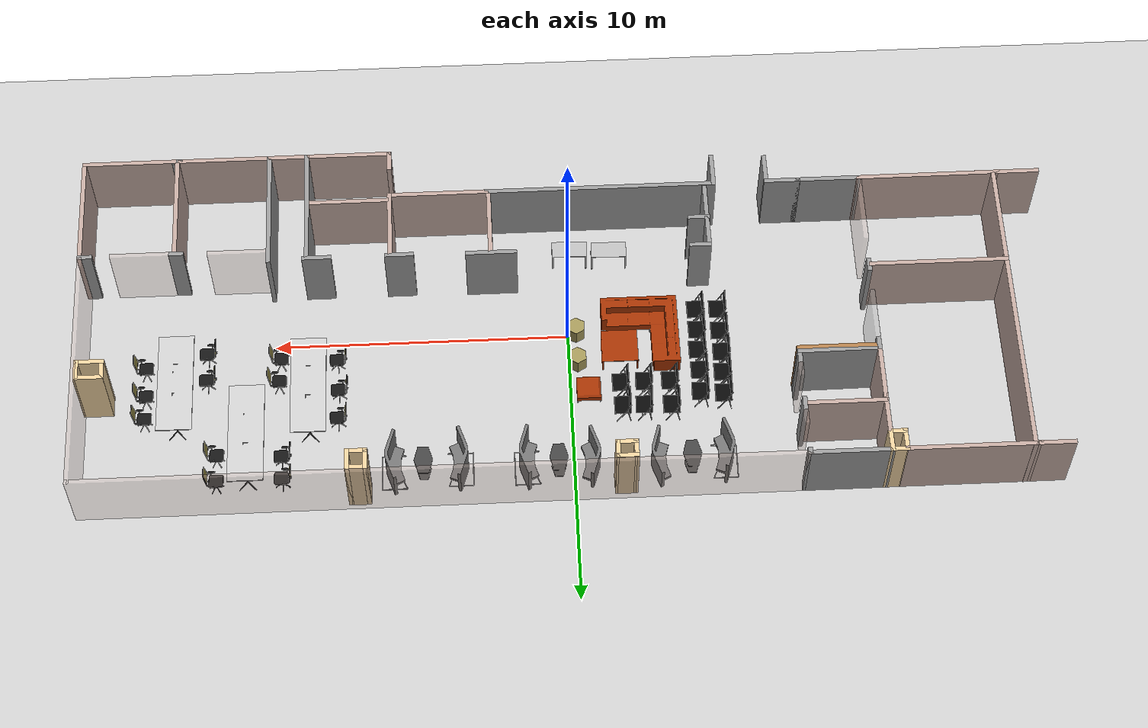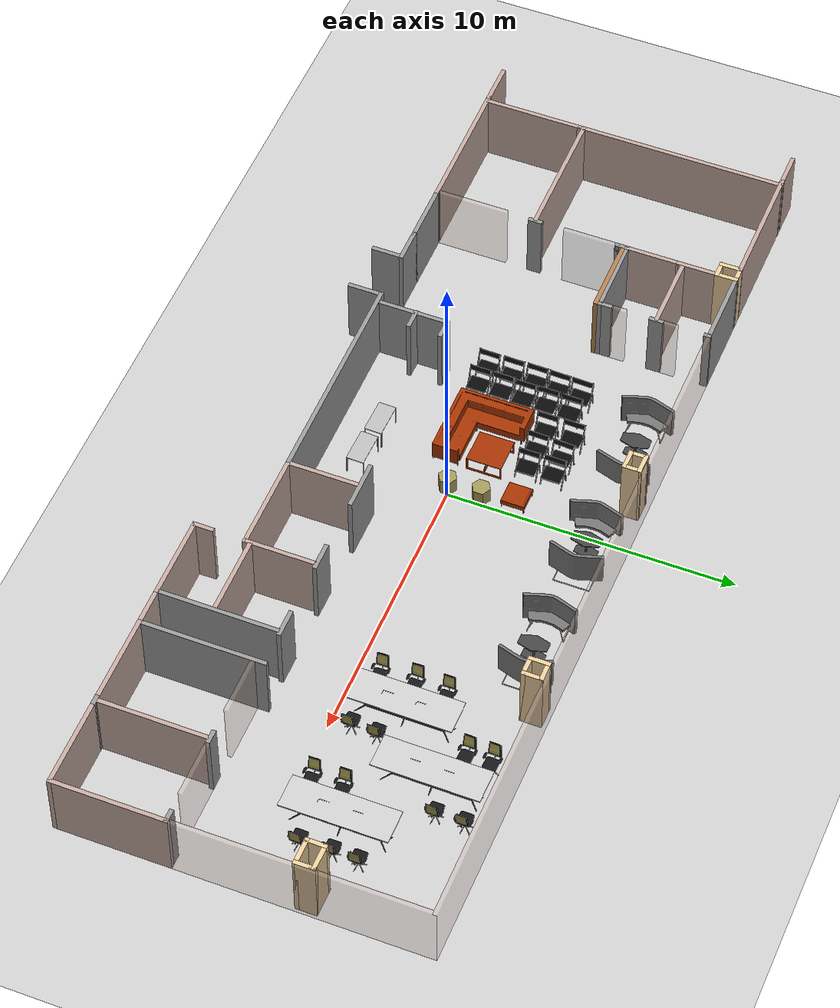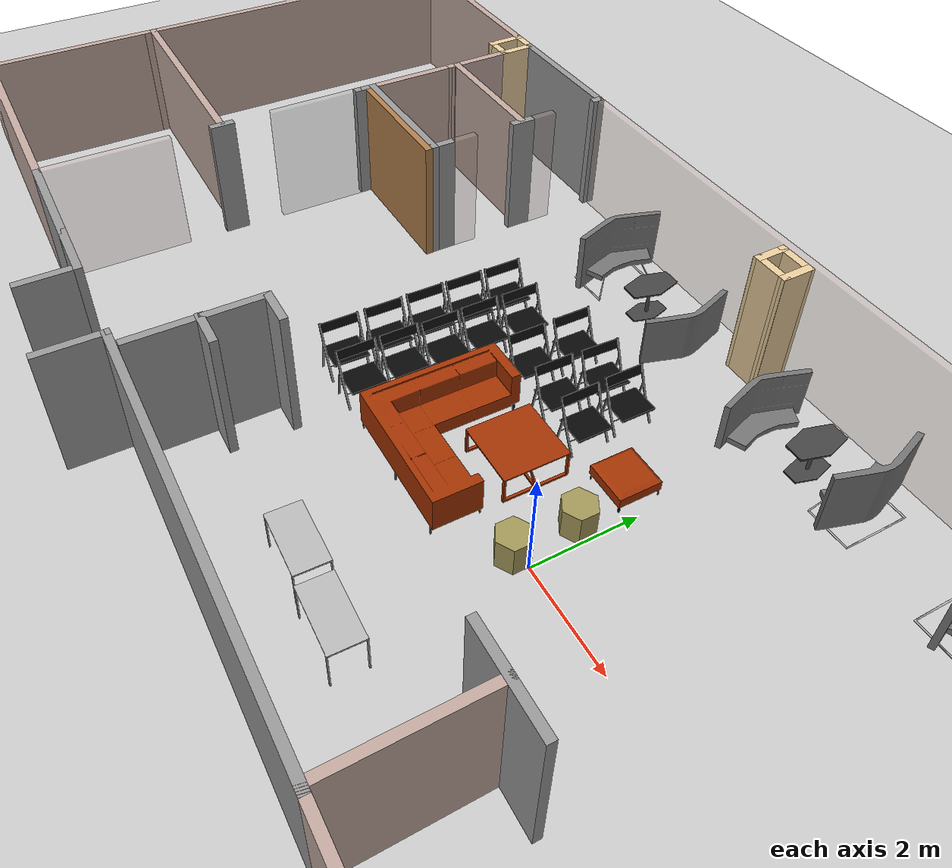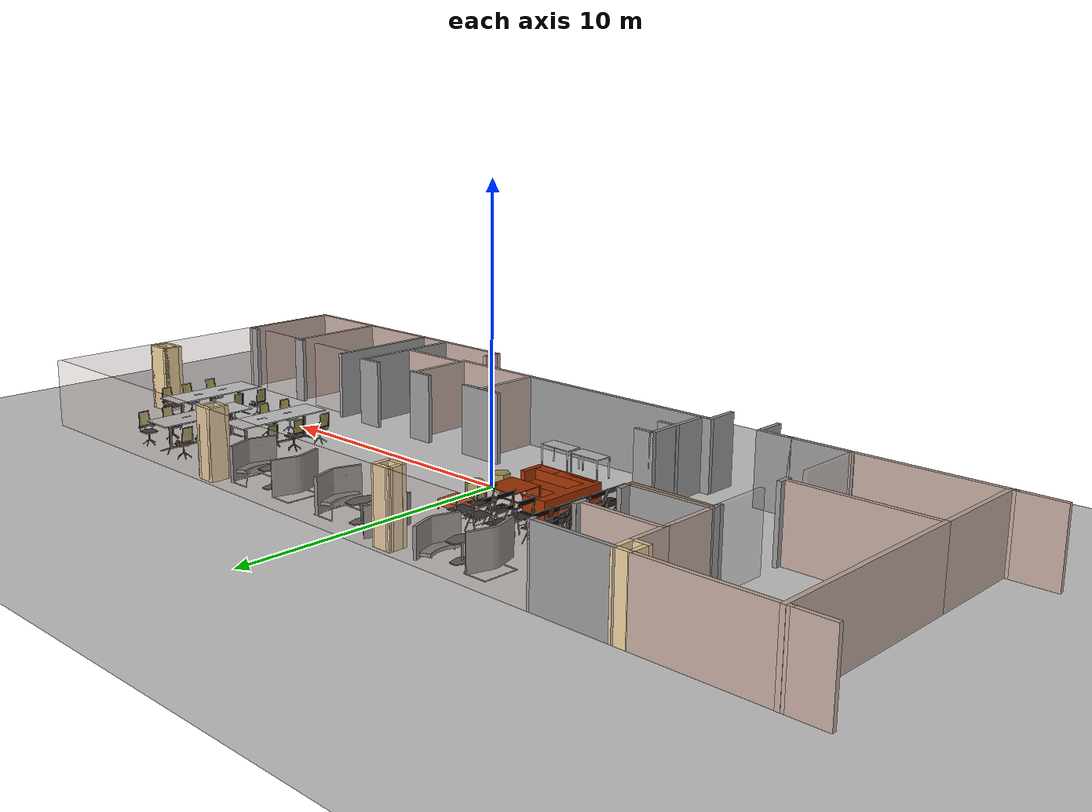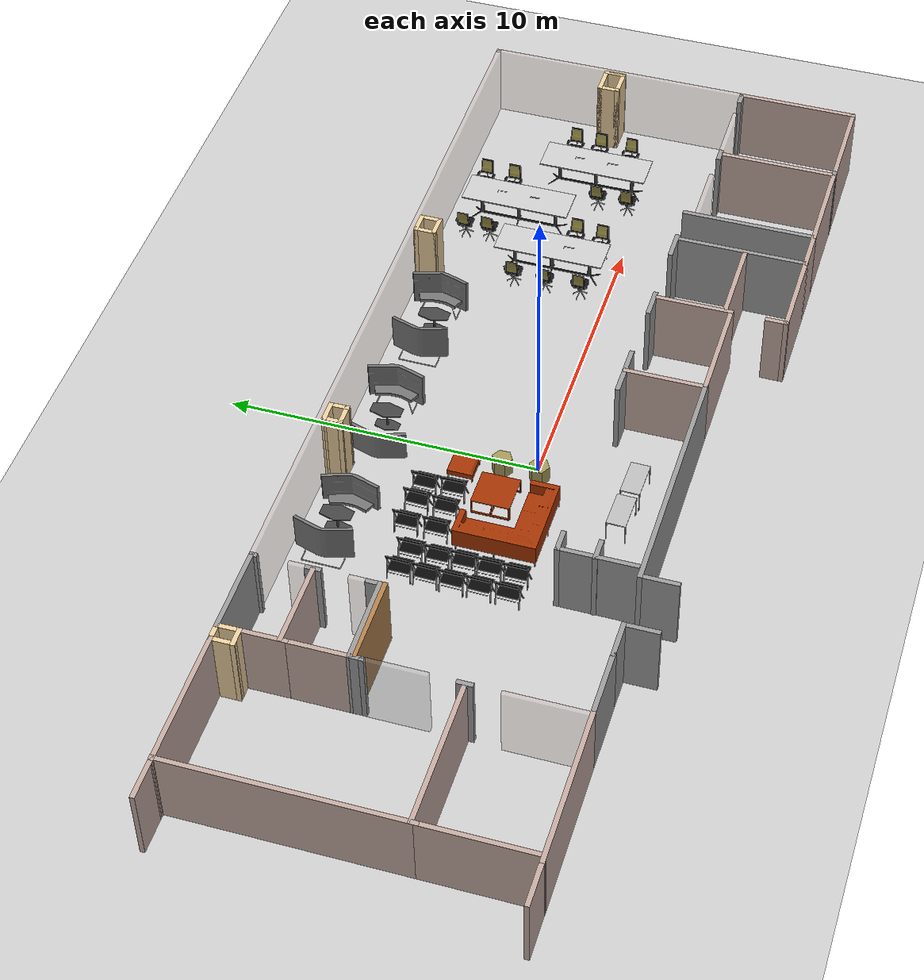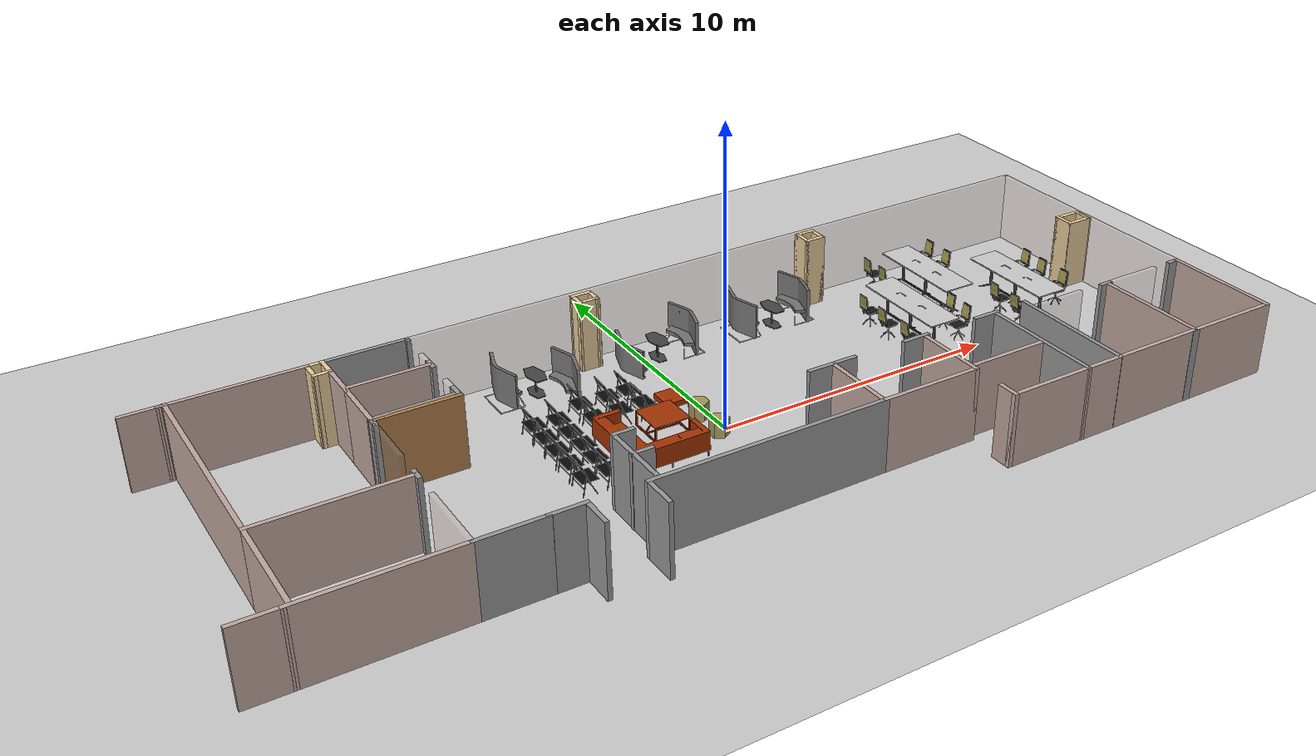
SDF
<?xml version="1.0" ?>
<sdf version="1.4">

  <world name="default">
    <include>
      <uri>model://ground_plane</uri>
    </include>

    <light name='sun' type='directional'>
      <cast_shadows>0</cast_shadows>
      <pose frame=''>0 0 10 0 -0 0</pose>
      <attenuation>
      </attenuation>
      <direction>-0.5 0.1 -0.9</direction>
    </light>

    <include>
      <uri>model://cr2_gazebo/models/ss_austin/austin_office_base</uri>
      <name>austin_office</name>
      <pose>0 0 0 0 0 0</pose>
    </include>

    <include>
      <uri>model://cr2_gazebo/models/ss_austin/sofa</uri>
      <name>sofa</name>
      <pose>-2.474693 0.283700 0.447276 -0.000004 -0.000002 3.140875</pose>
    </include>

    <include>
      <uri>model://cr2_gazebo/models/ss_austin/simple_chair</uri>
      <name>simple_chair_0</name>
      <pose>-1.752816 3.035121 0.458327 0.00 -0.000132 3.134327</pose>
    </include>

    <include>
      <uri>model://cr2_gazebo/models/ss_austin/simple_chair</uri>
      <name>simple_chair_1</name>
      <pose>-1.725184 2.139694 0.458326 -0.000003 -0.000134 -3.130285</pose>
    </include>

    <include>
      <uri>model://cr2_gazebo/models/ss_austin/simple_chair</uri>
      <name>simple_chair_2</name>
      <pose>-2.476814 3.044706 0.458328 0.000001 -0.000132 3.103170</pose>
    </include>

    <include>
      <uri>model://cr2_gazebo/models/ss_austin/simple_chair</uri>
      <name>simple_chair_3</name>
      <pose>-2.517177 2.132703 0.458328 0.000001 -0.000134 3.126198</pose>
    </include>

    <include>
      <uri>model://cr2_gazebo/models/ss_austin/simple_chair</uri>
      <name>simple_chair_4</name>
      <pose>-3.398947 3.074628 0.458329 -0.000003 -0.000134 3.132167</pose>
    </include>

    <include>
      <uri>model://cr2_gazebo/models/ss_austin/simple_chair</uri>
      <name>simple_chair_5</name>
      <pose>-3.394950 2.141943 0.458327 0.00 -0.000132 3.134203</pose>
    </include>

    <include>
      <uri>model://cr2_gazebo/models/ss_austin/simple_chair</uri>
      <name>simple_chair_6</name>
      <pose>-4.401969 2.606460 0.458325 0.000009 -0.000138 3.126337</pose>
    </include>

    <include>
      <uri>model://cr2_gazebo/models/ss_austin/simple_chair</uri>
      <name>simple_chair_7</name>
      <pose>-4.424557 1.771304 0.458328 0.00 -0.000134 -3.138608</pose>
    </include>

    <include>
      <uri>model://cr2_gazebo/models/ss_austin/simple_chair</uri>
      <name>simple_chair_8</name>
      <pose>-4.410206 0.962450 0.458327 0.00 -0.000132 -3.138225</pose>
    </include>

    <include>
      <uri>model://cr2_gazebo/models/ss_austin/simple_chair</uri>
      <name>simple_chair_9</name>
      <pose>-4.445363 0.160832 0.458327 0.00 -0.000132 -3.138929</pose>
    </include>

    <include>
      <uri>model://cr2_gazebo/models/ss_austin/simple_chair</uri>
      <name>simple_chair_10</name>
      <pose>-4.448195 -0.661269 0.458327 0.00 -0.000132 -3.138243</pose>
    </include>

    <include>
      <uri>model://cr2_gazebo/models/ss_austin/simple_chair</uri>
      <name>simple_chair_11</name>
      <pose>-5.183399 2.699501 0.458328 0.000001 -0.000132 3.126669</pose>
    </include>

    <include>
      <uri>model://cr2_gazebo/models/ss_austin/simple_chair</uri>
      <name>simple_chair_12</name>
      <pose>-5.201388 1.885506 0.458328 0.000001 -0.000132 3.126204</pose>
    </include>

    <include>
      <uri>model://cr2_gazebo/models/ss_austin/simple_chair</uri>
      <name>simple_chair_13</name>
      <pose>-5.220889 1.080064 0.458328 0.000001 -0.000132 3.126301</pose>
    </include>

    <include>
      <uri>model://cr2_gazebo/models/ss_austin/simple_chair</uri>
      <name>simple_chair_14</name>
      <pose>-5.212958 0.231431 0.458327 -0.000001 -0.000132 3.126477</pose>
    </include>

    <include>
      <uri>model://cr2_gazebo/models/ss_austin/simple_chair</uri>
      <name>simple_chair_15</name>
      <pose>-5.213259 -0.640615 0.458328 0.000001 -0.000132 3.126367</pose>
    </include>

    <include>
      <uri>model://cr2_gazebo/models/ss_austin/talk_sofa</uri>
      <name>talk_sofa_0</name>
      <pose>-5.171453 5.114709 0.778740 0.000004 0.000002 0.001596</pose>
    </include>

    <include>
      <uri>model://cr2_gazebo/models/ss_austin/talk_sofa</uri>
      <name>talk_sofa_1</name>
      <pose>-2.69869 5.06989 0.365 0 0 -3.12976</pose>
    </include>

    <include>
      <uri>model://cr2_gazebo/models/ss_austin/talk_sofa</uri>
      <name>talk_sofa_2</name>
      <pose>-0.743249 4.9706 0.365 0 -0 0.001606</pose>
    </include>

    <include>
      <uri>model://cr2_gazebo/models/ss_austin/talk_sofa</uri>
      <name>talk_sofa_3</name>
      <pose>6.142236 5.065474 0.778740 0.00 -0.000002 -3.130157</pose>
    </include>

    <include>
      <uri>model://cr2_gazebo/models/ss_austin/talk_sofa</uri>
      <name>talk_sofa_4</name>
      <pose>3.654634 5.031554 0.778743 0.00 0.00 0.001606</pose>
    </include>

    <include>
      <uri>model://cr2_gazebo/models/ss_austin/talk_sofa</uri>
      <name>talk_sofa_5</name>
      <pose>1.707233 5.085215 0.778743 0.00 0.000002 -3.129765</pose>
    </include>

    <include>
      <uri>model://cr2_gazebo/models/ss_austin/talk_table</uri>
      <name>talk_table_0</name>
      <pose>-3.929054 5.112441 0.404065 0.000006 0.000006 3.140211</pose>
    </include>

    <include>
      <uri>model://cr2_gazebo/models/ss_austin/talk_table</uri>
      <name>talk_table_1</name>
      <pose>0.516257 5.052311 0.404063 0.00 0.00 3.139933</pose>
    </include>

    <include>
      <uri>model://cr2_gazebo/models/ss_austin/talk_table</uri>
      <name>talk_table_2</name>
      <pose>5.025823 4.969944 0.404061 0.000010 -0.000006 -3.134065</pose>
    </include>

    <include>
      <uri>model://cr2_gazebo/models/ss_austin/long_table</uri>
      <name>long_table_1</name>
      <pose>13.292382 1.839442 0.610000 0.00 0.00 1.570009</pose>
    </include>

    <include>
      <uri>model://cr2_gazebo/models/ss_austin/long_table</uri>
      <name>long_table_2</name>
      <pose>10.882910 3.873014 0.610000 0.00 0.00 -1.57519</pose>
    </include>

    <include>
      <uri>model://cr2_gazebo/models/ss_austin/long_table</uri>
      <name>long_table_3</name>
      <pose>8.82175 2.112629 0.609995 0.000008 0.00 -1.575189</pose>
    </include>

    <include>
      <uri>model://cr2_gazebo/models/ss_austin/mini_table</uri>
      <name>mini_table</name>
      <pose>-1.52682 0.841662 0.490032 0 -3e-06 3.14018</pose>
    </include>

    <include>
      <uri>model://cr2_gazebo/models/ss_austin/stool</uri>
      <name>stool_1</name>
      <pose>-0.624225 2.19998 0.2 0 -0 3.14018</pose>
    </include>

    <include>
      <uri>model://cr2_gazebo/models/ss_austin/puffy_blue</uri>
      <name>puffy_blue_0</name>
      <pose>-0.3 -0.11 0.290000 0.00 0.00 3.140181</pose>
    </include>

    <include>
      <uri>model://cr2_gazebo/models/ss_austin/puffy_blue</uri>
      <name>puffy_blue_1</name>
      <pose>-0.3 1.07 0.29 0 -0 3.14018</pose>
    </include>

    <include>
      <uri>model://cr2_gazebo/models/ss_austin/table_in_the_kitchen</uri>
      <name>table_in_the_kitchen_1</name>
      <pose>-0.204635 -3.0939 0.5 0 -0 3.11796</pose>
    </include>

    <include>
      <uri>model://cr2_gazebo/models/ss_austin/table_in_the_kitchen</uri>
      <name>table_in_the_kitchen_2</name>
      <pose>-1.56907 -3.02112 0.499997 3e-06 -3e-06 3.11751</pose>
    </include>

    <include>
      <uri>model://cr2_gazebo/models/ss_austin/office_chair_near_white_table</uri>
      <name>office_chair_0</name>
      <pose>7.89232 0.873958 0.59 0 -0 1.58554</pose>
    </include>

    <include>
      <uri>model://cr2_gazebo/models/ss_austin/office_chair_near_white_table</uri>
      <name>office_chair_1</name>
      <pose>7.8549 2.053 0.59 0 -0 1.58585</pose>
    </include>

    <include>
      <uri>model://cr2_gazebo/models/ss_austin/office_chair_near_white_table</uri>
      <name>office_chair_2</name>
      <pose>7.8908 3.13126 0.59 0 -0 1.5854</pose>
    </include>

    <include>
      <uri>model://cr2_gazebo/models/ss_austin/office_chair_near_white_table</uri>
      <name>office_chair_3</name>
      <pose>12.31 0.442557 0.59 0 -0 1.58605</pose>
    </include>

    <include>
      <uri>model://cr2_gazebo/models/ss_austin/office_chair_near_white_table</uri>
      <name>office_chair_4</name>
      <pose>12.3097 1.47774 0.59 0 -0 1.58163</pose>
    </include>

    <include>
      <uri>model://cr2_gazebo/models/ss_austin/office_chair_near_white_table</uri>
      <name>office_chair_5</name>
      <pose>14.3537 0.939361 0.59 0 0 -1.57935</pose>
    </include>

    <include>
      <uri>model://cr2_gazebo/models/ss_austin/office_chair_near_white_table</uri>
      <name>office_chair_6</name>
      <pose>11.9001 5.38199 0.59 0 0 -1.57935</pose>
    </include>

    <include>
      <uri>model://cr2_gazebo/models/ss_austin/office_chair_near_white_table</uri>
      <name>office_chair_7</name>
      <pose>11.8993 4.41126 0.59 0 0 -1.57935</pose>
    </include>

    <include>
      <uri>model://cr2_gazebo/models/ss_austin/office_chair_near_white_table</uri>
      <name>office_chair_8</name>
      <pose>9.75719 4.54106 0.59 0 -0 1.54139</pose>
    </include>

    <include>
      <uri>model://cr2_gazebo/models/ss_austin/office_chair_near_white_table</uri>
      <name>office_chair_9</name>
      <pose>9.73888 5.37214 0.59 0 -0 1.54139</pose>
    </include>

    <include>
      <uri>model://cr2_gazebo/models/ss_austin/office_chair_near_white_table</uri>
      <name>office_chair_10</name>
      <pose>14.3339 2.02488 0.59 0 0 -1.57935</pose>
    </include>

    <include>
      <uri>model://cr2_gazebo/models/ss_austin/office_chair_near_white_table</uri>
      <name>office_chair_11</name>
      <pose>14.3633 2.90135 0.59 0 0 -1.57935</pose>
    </include>

    <include>
      <uri>model://cr2_gazebo/models/ss_austin/office_chair_near_white_table</uri>
      <name>office_chair_12</name>
      <pose>9.776310 0.738197 0.590000 0.00 0.00 -1.579350</pose>
    </include>

    <include>
      <uri>model://cr2_gazebo/models/ss_austin/office_chair_near_white_table</uri>
      <name>office_chair_13</name>
      <pose>9.841594 1.625942 0.5900000 0.00 0.00 -1.579350</pose>
    </include>

    <gui fullscreen='0'>
      <camera name='user_camera'>
        <pose>4.927360 -4.376610 3.740080 0.000000 0.275643 2.356190</pose>
        <view_controller>orbit</view_controller>
      </camera>
    </gui>

  </world>
</sdf>

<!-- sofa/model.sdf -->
<sdf version='1.5'>
    <model name="sofa">
        <pose>0 0 0 0 0 0</pose>
        <static>false</static>
        <link name='model_body'>
            <visual name="visual">
                <geometry>
                    <mesh>
                        <uri>model://cr2_gazebo/meshes/ss_austin/sofa_visual.dae</uri>
                        <scale>1 1 1</scale>
                    </mesh>
                </geometry>
            </visual>

            <collision name="collision">
                <geometry>
                    <mesh>
                        <uri>model://cr2_gazebo/meshes/ss_austin/sofa_collision.stl</uri>
                        <scale>1 1 1</scale>
                    </mesh>
                </geometry>
            </collision>

            <inertial>
                <pose> 0 0 0 0 0 0</pose>
                <inertia>
                    <ixx>24.88533333333333</ixx>
                    <ixy>0</ixy>
                    <ixz>0</ixz>
                    <iyy>24.88533333333333</iyy>
                    <iyz>0</iyz>
                    <izz>45.06666666666667</izz>
                </inertia>
                <mass>40.0</mass>
            </inertial>
        </link>
    </model>
</sdf>

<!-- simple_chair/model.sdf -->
<sdf version='1.5'>
    <model name="simple_chair">
        <pose>0 0 0 0 0 0</pose>
        <static>false</static>
        <link name='model_body'>
            <visual name="visual">
                <geometry>
                    <mesh>
                        <uri>model://cr2_gazebo/meshes/ss_austin/simple_chair_visual.dae</uri>
                        <scale>1 1 1</scale>
                    </mesh>
                </geometry>
            </visual>

            <collision name="collision">
                <geometry>
                    <box>
                        <size>0.87 0.87 1.02</size>
                    </box>
                </geometry>
            </collision>

            <inertial>
                <pose> 0 0 0 0 0 0</pose>
                <inertia>
                    <ixx>0.4706666666666666</ixx>
                    <ixy>0</ixy>
                    <ixz>0</ixz>
                    <iyy>0.4706666666666666</iyy>
                    <iyz>0</iyz>
                    <izz>0.10799999999999998</izz>
                </inertia>
                <mass>5.0</mass>
            </inertial>
        </link>
    </model>
</sdf>

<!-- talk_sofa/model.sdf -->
<sdf version='1.5'>
    <model name="talk_sofa">
        <pose>0 0 0 0 0 0</pose>
        <static>false</static>
        <link name='model_body'>
            <visual name="visual">
                <geometry>
                    <mesh>
                        <uri>model://cr2_gazebo/meshes/ss_austin/talk_sofa_visual.dae</uri>
                        <scale>1 1 1</scale>
                    </mesh>
                </geometry>
            </visual>

            <collision name="collision">
                <geometry>
                    <box>
                        <size>0.86 1.23 1.73</size>
                    </box>
                </geometry>
            </collision>

            <inertial>
                <pose> 0 0 0 0 0 0</pose>
                <inertia>
                    <ixx>18.594</ixx>
                    <ixy>0</ixy>
                    <ixz>0</ixz>
                    <iyy>9.418</iyy>
                    <iyz>0</iyz>
                    <izz>12.874</izz>
                </inertia>
                <mass>30.0</mass>
            </inertial>
        </link>
    </model>
</sdf>

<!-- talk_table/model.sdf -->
<sdf version='1.5'>
    <model name="talk_table">
        <pose>0 0 0 0 0 0</pose>
        <static>false</static>
        <link name='model_body'>
            <visual name="visual">
                <geometry>
                    <mesh>
                        <uri>model://cr2_gazebo/meshes/ss_austin/talk_table_visual.dae</uri>
                        <scale>1 1 1</scale>
                    </mesh>
                </geometry>
            </visual>

            <collision name="collision">
                <geometry>
                    <box>
                        <size>0.63 0.99 0.98</size>
                    </box>
                </geometry>
            </collision>

            <inertial>
                <pose> 0 0 0 0 0 0</pose>
                <inertia>
                    <ixx>0.7312000000000001</ixx>
                    <ixy>0</ixy>
                    <ixz>0</ixz>
                    <iyy>0.4296500000000001</iyy>
                    <iyz>0</iyz>
                    <izz>0.69845</izz>
                </inertia>
                <mass>10.0</mass>
            </inertial>
        </link>
    </model>
</sdf>

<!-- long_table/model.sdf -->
<sdf version='1.5'>
    <model name="long_table">
        <pose>0 0 0 0 0 0</pose>
        <static>false</static>
        <link name='model_body'>
            <visual name="visual">
                <geometry>
                    <mesh>
                        <uri>model://cr2_gazebo/meshes/ss_austin/long_table_visual.dae</uri>
                        <scale>1 1 1</scale>
                    </mesh>
                </geometry>
            </visual>

            <collision name="collision">
                <geometry>
                    <box>
                        <size>3.65 1.2 0.05</size>
                    </box>
                </geometry>
            </collision>

            <inertial>
                <pose> 0 0 0 0 0 0</pose>
                <inertia>
                    <ixx>3.0833333333333335</ixx>
                    <ixy>0</ixy>
                    <ixz>0</ixz>
                    <iyy>21.396833333333337</iyy>
                    <iyz>0</iyz>
                    <izz>20.446833333333334</izz>
                </inertia>
                <mass>20.0</mass>
            </inertial>
        </link>
    </model>
</sdf>

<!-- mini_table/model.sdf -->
<sdf version='1.5'>
    <model name="mini_table">
        <pose>0 0 0 0 0 0</pose>
        <static>false</static>
        <link name='model_body'>
            <visual name="visual">
                <geometry>
                    <mesh>
                        <uri>model://cr2_gazebo/meshes/ss_austin/mini_table_visual.dae</uri>
                        <scale>1 1 1</scale>
                    </mesh>
                </geometry>
            </visual>

            <collision name="collision">
                <geometry>
                    <box>
                        <size>1.23 1.23 0.52</size>
                    </box>
                </geometry>
            </collision>

            <inertial>
                <pose> 0 0 0 0 0 0</pose>
                <inertia>
                    <ixx>1.4860833333333332</ixx>
                    <ixy>0</ixy>
                    <ixz>0</ixz>
                    <iyy>1.4860833333333332</iyy>
                    <iyz>0</iyz>
                    <izz>2.5214999999999996</izz>
                </inertia>
                <mass>10.0</mass>
            </inertial>
        </link>
    </model>
</sdf>

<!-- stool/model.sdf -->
<sdf version='1.5'>
    <model name="stool">
        <pose>0 0 0 0 0 0</pose>
        <static>false</static>
        <link name='model_body'>
            <visual name="visual">
                <geometry>
                    <mesh>
                        <uri>model://cr2_gazebo/meshes/ss_austin/stool_visual.dae</uri>
                        <scale>1 1 1</scale>
                    </mesh>
                </geometry>
            </visual>

            <collision name="collision">
                <geometry>
                    <box>
                        <size>0.82 0.82 0.4</size>
                    </box>
                </geometry>
            </collision>

            <inertial>
                <pose> 0 0 0 0 0 0</pose>
                <inertia>
                    <ixx>0.6936666666666665</ixx>
                    <ixy>0</ixy>
                    <ixz>0</ixz>
                    <iyy>0.6936666666666665</iyy>
                    <iyz>0</iyz>
                    <izz>1.1206666666666665</izz>
                </inertia>
                <mass>10.0</mass>
            </inertial>
        </link>
    </model>
</sdf>

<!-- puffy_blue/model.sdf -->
<sdf version='1.5'>
    <model name="puffy_blue">
        <pose>0 0 0 0 0 0</pose>
        <static>false</static>
        <link name='model_body'>
            <visual name="visual">
                <geometry>
                    <mesh>
                        <uri>model://cr2_gazebo/meshes/ss_austin/puffy_blue_visual.dae</uri>
                        <scale>1 1 1</scale>
                    </mesh>
                </geometry>
            </visual>

            <collision name="collision">
                <geometry>
                    <box>
                        <size>0.56 0.65 0.58</size>
                    </box>
                </geometry>
            </collision>

            <inertial>
                <pose> 0 0 0 0 0 0</pose>
                <inertia>
                    <ixx>0.3162083333333333</ixx>
                    <ixy>0</ixy>
                    <ixz>0</ixz>
                    <iyy>0.2708333333333333</iyy>
                    <iyz>0</iyz>
                    <izz>0.30670833333333336</izz>
                </inertia>
                <mass>5.0</mass>
            </inertial>
        </link>
    </model>
</sdf>

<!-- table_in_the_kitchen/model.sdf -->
<sdf version='1.5'>
    <model name="table_in_the_kitchen">
        <pose>0 0 0 0 0 0</pose>
        <static>false</static>
        <link name='model_body'>
            <visual name="visual">
                <geometry>
                    <mesh>
                        <uri>model://cr2_gazebo/meshes/ss_austin/kitchen_table_visual.dae</uri>
                        <scale>1 1 1</scale>
                    </mesh>
                </geometry>
            </visual>

            <collision name="collision">
                <geometry>
                    <box>
                        <size>1.21 0.61 1.0</size>
                    </box>
                </geometry>
            </collision>

            <inertial>
                <pose> 0 0 0 0 0 0</pose>
                <inertia>
                    <ixx>1.1434166666666667</ixx>
                    <ixy>0</ixy>
                    <ixz>0</ixz>
                    <iyy>2.0534166666666667</iyy>
                    <iyz>0</iyz>
                    <izz>1.5301666666666665</izz>
                </inertia>
                <mass>10.0</mass>
            </inertial>
        </link>
    </model>
</sdf>

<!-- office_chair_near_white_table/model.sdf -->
<sdf version='1.5'>
    <model name="office_chair_near_white_table">
        <pose>0 0 0 0 0 0</pose>
        <static>false</static>
        <link name='model_body'>
            <visual name="visual">
                <geometry>
                    <mesh>
                        <uri>model://cr2_gazebo/meshes/ss_austin/office_chair_near_white_table_visual.dae</uri>
                        <scale>1 1 1</scale>
                    </mesh>
                </geometry>
            </visual>

            <collision name="collision">
                <geometry>
                    <box>
                        <size>0.6 0.6 1.18</size>
                    </box>
                </geometry>
            </collision>

            <inertial>
                <pose> 0 0 0 0 0 0</pose>
                <inertia>
                    <ixx>2.1904999999999997</ixx>
                    <ixy>0</ixy>
                    <ixz>0</ixz>
                    <iyy>2.1904999999999997</iyy>
                    <iyz>0</iyz>
                    <izz>0.8999999999999999</izz>
                </inertia>
                <mass>15.0</mass>
            </inertial>
        </link>
    </model>
</sdf>
